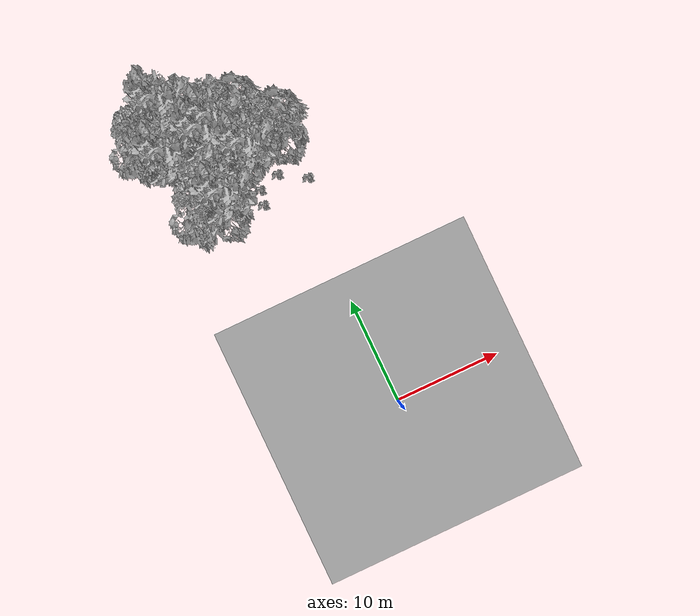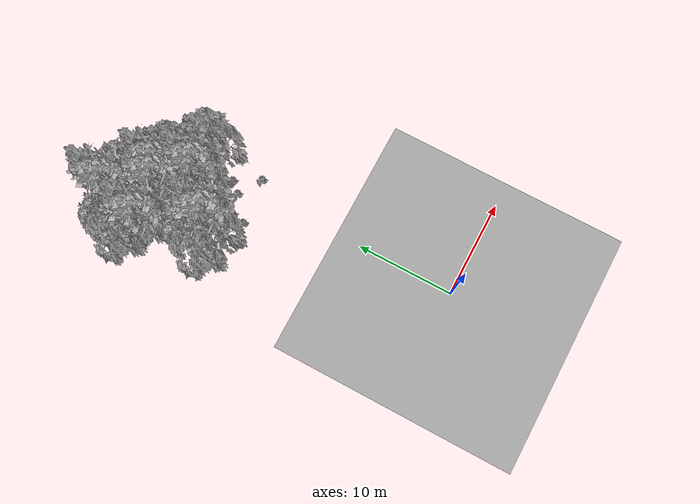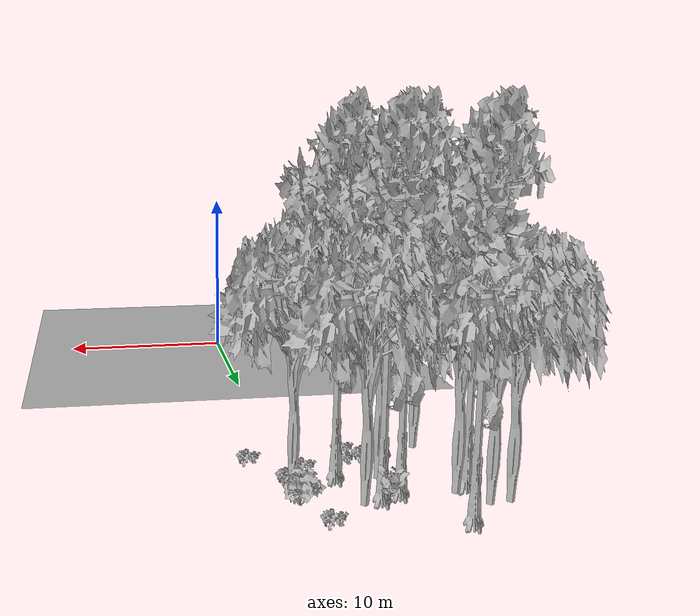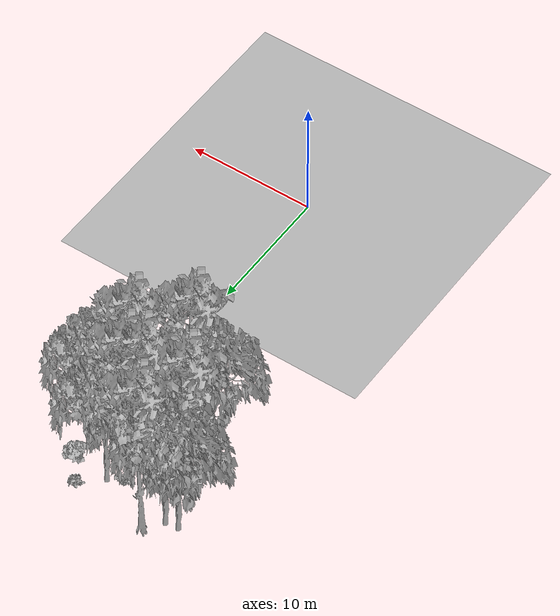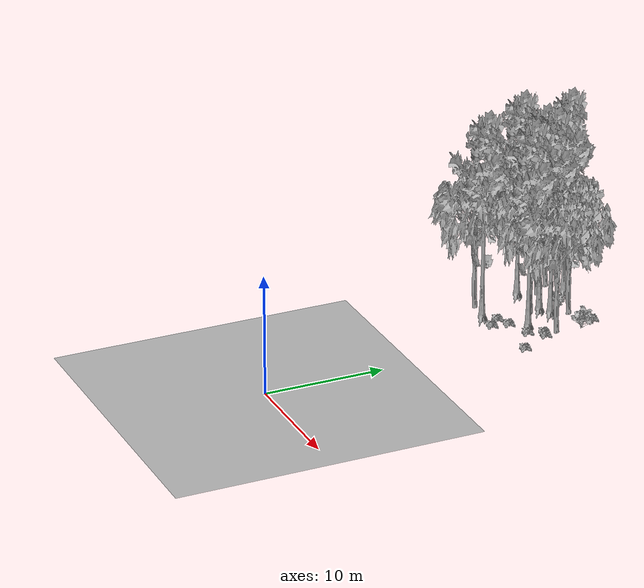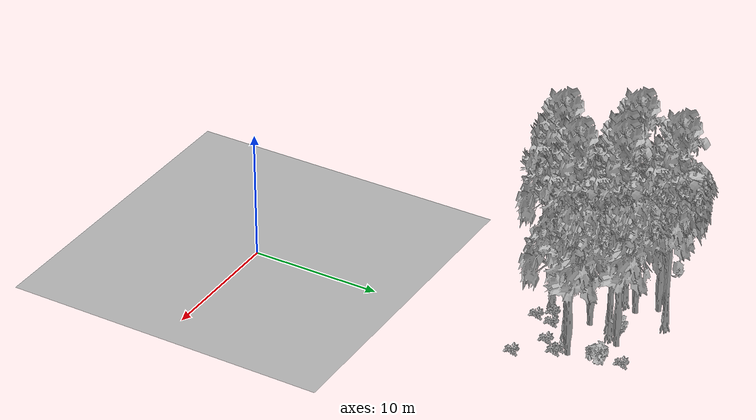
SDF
<sdf version="1.7">
 <world name="default">
  <model name="ground_plane">
   <static>1</static>
   <link name="link">
    <collision name="collision">
     <pose>-50 0 0 0 -0 0</pose>
     <geometry><plane><normal>0 0 1</normal><size>80 80</size></plane></geometry>
     <surface><contact><ode><min_depth>0.01</min_depth><max_vel>0</max_vel></ode></contact></surface>
    </collision>
    <visual name="grass">
     <cast_shadows>0</cast_shadows>
     <geometry>
      <mesh>
       <scale>0.46714285714285714 0.46714285714285714 0.1</scale>
       <uri>file://grass_plane/meshes/grass_plane.dae</uri>
      </mesh>
     </geometry>
    </visual>
   </link>
  </model>
  <model name="Tree 70">
   <static>1</static>
   <pose>-3.932367703115574 26.80478274083137 0 1.57079 -0 0</pose>
   <link name="link">
    <collision name="collision">
     <geometry><mesh><scale>3.5 5 3.5</scale><uri>model://tree_9/meshes/tree_9.obj</uri></mesh></geometry>
    </collision>
    <visual name="visual">
     <geometry><mesh><scale>3.5 5 3.5</scale><uri>model://tree_9/meshes/tree_9.obj</uri></mesh></geometry>
    </visual>
   </link>
  </model>
  <model name="Tree 151">
   <static>1</static>
   <pose>-4.293098350465613 25.10736869755408 0 1.57079 -0 0</pose>
   <link name="link">
    <collision name="collision">
     <geometry><mesh><scale>3.5 5 3.5</scale><uri>model://tree_2/meshes/tree_2.obj</uri></mesh></geometry>
    </collision>
    <visual name="visual">
     <geometry><mesh><scale>3.5 5 3.5</scale><uri>model://tree_2/meshes/tree_2.obj</uri></mesh></geometry>
    </visual>
   </link>
  </model>
  <model name="Tree 171">
   <static>1</static>
   <pose>-7.233199053470216 27.220813387638074 0 1.57079 -0 0</pose>
   <link name="link">
    <collision name="collision">
     <geometry><mesh><scale>3.5 5 3.5</scale><uri>model://tree_2/meshes/tree_2.obj</uri></mesh></geometry>
    </collision>
    <visual name="visual">
     <geometry><mesh><scale>3.5 5 3.5</scale><uri>model://tree_2/meshes/tree_2.obj</uri></mesh></geometry>
    </visual>
   </link>
  </model>
  <model name="Tree 188">
   <static>1</static>
   <pose>-7.135165696616173 21.52559812594903 0 1.57079 -0 0</pose>
   <link name="link">
    <collision name="collision">
     <geometry><mesh><scale>3.5 5 3.5</scale><uri>model://tree_2/meshes/tree_2.obj</uri></mesh></geometry>
    </collision>
    <visual name="visual">
     <geometry><mesh><scale>3.5 5 3.5</scale><uri>model://tree_2/meshes/tree_2.obj</uri></mesh></geometry>
    </visual>
   </link>
  </model>
  <model name="Tree 293">
   <static>1</static>
   <pose>-8.14332075240138 25.93943602535363 0 1.57079 -0 0</pose>
   <link name="link">
    <collision name="collision">
     <geometry><mesh><scale>3.5 5 3.5</scale><uri>model://tree_9/meshes/tree_9.obj</uri></mesh></geometry>
    </collision>
    <visual name="visual">
     <geometry><mesh><scale>3.5 5 3.5</scale><uri>model://tree_9/meshes/tree_9.obj</uri></mesh></geometry>
    </visual>
   </link>
  </model>
  <model name="Tree 299">
   <static>1</static>
   <pose>-9.24915172866637 28.42594844060001 0 1.57079 -0 0</pose>
   <link name="link">
    <collision name="collision">
     <geometry><mesh><scale>3.5 5 3.5</scale><uri>model://tree_2/meshes/tree_2.obj</uri></mesh></geometry>
    </collision>
    <visual name="visual">
     <geometry><mesh><scale>3.5 5 3.5</scale><uri>model://tree_2/meshes/tree_2.obj</uri></mesh></geometry>
    </visual>
   </link>
  </model>
  <model name="Tree 309">
   <static>1</static>
   <pose>-0.26810034304313035 25.38603379034167 0 1.57079 -0 0</pose>
   <link name="link">
    <collision name="collision">
     <geometry><mesh><scale>3.5 5 3.5</scale><uri>model://tree_2/meshes/tree_2.obj</uri></mesh></geometry>
    </collision>
    <visual name="visual">
     <geometry><mesh><scale>3.5 5 3.5</scale><uri>model://tree_2/meshes/tree_2.obj</uri></mesh></geometry>
    </visual>
   </link>
  </model>
  <model name="Tree 335">
   <static>1</static>
   <pose>-2.924320433168347 27.858043228816328 0 1.57079 -0 0</pose>
   <link name="link">
    <collision name="collision">
     <geometry><mesh><scale>3.5 5 3.5</scale><uri>model://tree_2/meshes/tree_2.obj</uri></mesh></geometry>
    </collision>
    <visual name="visual">
     <geometry><mesh><scale>3.5 5 3.5</scale><uri>model://tree_2/meshes/tree_2.obj</uri></mesh></geometry>
    </visual>
   </link>
  </model>
  <model name="Tree 412">
   <static>1</static>
   <pose>-4.91412500608164 26.29903371427369 0 1.57079 -0 0</pose>
   <link name="link">
    <collision name="collision">
     <geometry><mesh><scale>3.5 5 3.5</scale><uri>model://tree_9/meshes/tree_9.obj</uri></mesh></geometry>
    </collision>
    <visual name="visual">
     <geometry><mesh><scale>3.5 5 3.5</scale><uri>model://tree_9/meshes/tree_9.obj</uri></mesh></geometry>
    </visual>
   </link>
  </model>
  <model name="Tree 487">
   <static>1</static>
   <pose>-8.27756281185276 28.547648444129294 0 1.57079 -0 0</pose>
   <link name="link">
    <collision name="collision">
     <geometry><mesh><scale>3.5 5 3.5</scale><uri>model://tree_2/meshes/tree_2.obj</uri></mesh></geometry>
    </collision>
    <visual name="visual">
     <geometry><mesh><scale>3.5 5 3.5</scale><uri>model://tree_2/meshes/tree_2.obj</uri></mesh></geometry>
    </visual>
   </link>
  </model>
  <model name="Tree 499">
   <static>1</static>
   <pose>-2.4960705423767067 24.06027722003104 0 1.57079 -0 0</pose>
   <link name="link">
    <collision name="collision">
     <geometry><mesh><scale>3.5 5 3.5</scale><uri>model://tree_9/meshes/tree_9.obj</uri></mesh></geometry>
    </collision>
    <visual name="visual">
     <geometry><mesh><scale>3.5 5 3.5</scale><uri>model://tree_9/meshes/tree_9.obj</uri></mesh></geometry>
    </visual>
   </link>
  </model>
  <model name="Tree 526">
   <static>1</static>
   <pose>-5.529770582468629 21.45051986400658 0 1.57079 -0 0</pose>
   <link name="link">
    <collision name="collision">
     <geometry><mesh><scale>3.5 5 3.5</scale><uri>model://tree_9/meshes/tree_9.obj</uri></mesh></geometry>
    </collision>
    <visual name="visual">
     <geometry><mesh><scale>3.5 5 3.5</scale><uri>model://tree_9/meshes/tree_9.obj</uri></mesh></geometry>
    </visual>
   </link>
  </model>
  <model name="Tree 533">
   <static>1</static>
   <pose>-7.020440348722406 29.656086151538233 0 1.57079 -0 0</pose>
   <link name="link">
    <collision name="collision">
     <geometry><mesh><scale>3.5 5 3.5</scale><uri>model://tree_9/meshes/tree_9.obj</uri></mesh></geometry>
    </collision>
    <visual name="visual">
     <geometry><mesh><scale>3.5 5 3.5</scale><uri>model://tree_9/meshes/tree_9.obj</uri></mesh></geometry>
    </visual>
   </link>
  </model>
  <model name="Bush 110">
   <static>1</static>
   <pose>-3.4792248151028176 21.27525289592397 0 1.57079 -0 0</pose>
   <link name="link">
    <collision name="collision">
     <geometry><mesh><scale>2 2 2</scale><uri>model://bush_2/meshes/bush_2.obj</uri></mesh></geometry>
     <surface><contact><collide_without_contact>false</collide_without_contact></contact></surface>
    </collision>
    <visual name="visual">
     <geometry><mesh><scale>2 2 2</scale><uri>model://bush_2/meshes/bush_2.obj</uri></mesh></geometry>
    </visual>
   </link>
  </model>
  <model name="Bush 172">
   <static>1</static>
   <pose>1.2813445118520477 21.81667472275172 0 1.57079 -0 0</pose>
   <link name="link">
    <collision name="collision">
     <geometry><mesh><scale>2 2 2</scale><uri>model://bush_2/meshes/bush_2.obj</uri></mesh></geometry>
     <surface><contact><collide_without_contact>false</collide_without_contact></contact></surface>
    </collision>
    <visual name="visual">
     <geometry><mesh><scale>2 2 2</scale><uri>model://bush_2/meshes/bush_2.obj</uri></mesh></geometry>
    </visual>
   </link>
  </model>
  <model name="Bush 187">
   <static>1</static>
   <pose>-0.1548870584384261 24.374348364880348 0 1.57079 -0 0</pose>
   <link name="link">
    <collision name="collision">
     <geometry><mesh><scale>2 2 2</scale><uri>model://bush_2/meshes/bush_2.obj</uri></mesh></geometry>
     <surface><contact><collide_without_contact>false</collide_without_contact></contact></surface>
    </collision>
    <visual name="visual">
     <geometry><mesh><scale>2 2 2</scale><uri>model://bush_2/meshes/bush_2.obj</uri></mesh></geometry>
    </visual>
   </link>
  </model>
  <model name="Bush 239">
   <static>1</static>
   <pose>-1.1595659281976864 29.13217907054245 0 1.57079 -0 0</pose>
   <link name="link">
    <collision name="collision">
     <geometry><mesh><scale>2 2 2</scale><uri>model://bush_2/meshes/bush_2.obj</uri></mesh></geometry>
     <surface><contact><collide_without_contact>false</collide_without_contact></contact></surface>
    </collision>
    <visual name="visual">
     <geometry><mesh><scale>2 2 2</scale><uri>model://bush_2/meshes/bush_2.obj</uri></mesh></geometry>
    </visual>
   </link>
  </model>
  <model name="Bush 246">
   <static>1</static>
   <pose>-1.1308425029260434 23.268954702294067 0 1.57079 -0 0</pose>
   <link name="link">
    <collision name="collision">
     <geometry><mesh><scale>2 2 2</scale><uri>model://bush_2/meshes/bush_2.obj</uri></mesh></geometry>
     <surface><contact><collide_without_contact>false</collide_without_contact></contact></surface>
    </collision>
    <visual name="visual">
     <geometry><mesh><scale>2 2 2</scale><uri>model://bush_2/meshes/bush_2.obj</uri></mesh></geometry>
    </visual>
   </link>
  </model>
  <model name="Bush 312">
   <static>1</static>
   <pose>-4.004357932207803 27.599025553260418 0 1.57079 -0 0</pose>
   <link name="link">
    <collision name="collision">
     <geometry><mesh><scale>2 2 2</scale><uri>model://bush_0/meshes/bush_0.obj</uri></mesh></geometry>
     <surface><contact><collide_without_contact>false</collide_without_contact></contact></surface>
    </collision>
    <visual name="visual">
     <geometry><mesh><scale>2 2 2</scale><uri>model://bush_0/meshes/bush_0.obj</uri></mesh></geometry>
    </visual>
   </link>
  </model>
  <model name="Bush 332">
   <static>1</static>
   <pose>-3.1721797682702757 22.634360157141643 0 1.57079 -0 0</pose>
   <link name="link">
    <collision name="collision">
     <geometry><mesh><scale>2 2 2</scale><uri>model://bush_2/meshes/bush_2.obj</uri></mesh></geometry>
     <surface><contact><collide_without_contact>false</collide_without_contact></contact></surface>
    </collision>
    <visual name="visual">
     <geometry><mesh><scale>2 2 2</scale><uri>model://bush_2/meshes/bush_2.obj</uri></mesh></geometry>
    </visual>
   </link>
  </model>
  <model name="Bush 356">
   <static>1</static>
   <pose>-0.09526757582455048 27.577447405158154 0 1.57079 -0 0</pose>
   <link name="link">
    <collision name="collision">
     <geometry><mesh><scale>2 2 2</scale><uri>model://bush_1/meshes/bush_1.obj</uri></mesh></geometry>
     <surface><contact><collide_without_contact>false</collide_without_contact></contact></surface>
    </collision>
    <visual name="visual">
     <geometry><mesh><scale>2 2 2</scale><uri>model://bush_1/meshes/bush_1.obj</uri></mesh></geometry>
    </visual>
   </link>
  </model>
  <model name="Bush 610">
   <static>1</static>
   <pose>-4.310465498006344 22.180031503738313 0 1.57079 -0 0</pose>
   <link name="link">
    <collision name="collision">
     <geometry><mesh><scale>2 2 2</scale><uri>model://bush_2/meshes/bush_2.obj</uri></mesh></geometry>
     <surface><contact><collide_without_contact>false</collide_without_contact></contact></surface>
    </collision>
    <visual name="visual">
     <geometry><mesh><scale>2 2 2</scale><uri>model://bush_2/meshes/bush_2.obj</uri></mesh></geometry>
    </visual>
   </link>
  </model>
  <model name="Bush 628">
   <static>1</static>
   <pose>-0.6500896302761134 24.512684225913176 0 1.57079 -0 0</pose>
   <link name="link">
    <collision name="collision">
     <geometry><mesh><scale>2 2 2</scale><uri>model://bush_2/meshes/bush_2.obj</uri></mesh></geometry>
     <surface><contact><collide_without_contact>false</collide_without_contact></contact></surface>
    </collision>
    <visual name="visual">
     <geometry><mesh><scale>2 2 2</scale><uri>model://bush_2/meshes/bush_2.obj</uri></mesh></geometry>
    </visual>
   </link>
  </model>
 </world>
</sdf>
